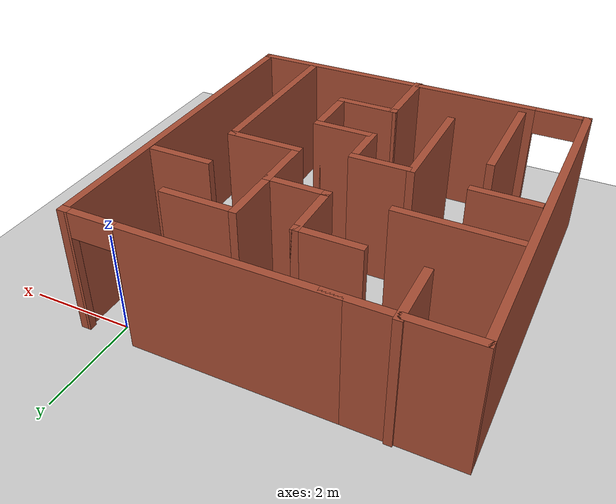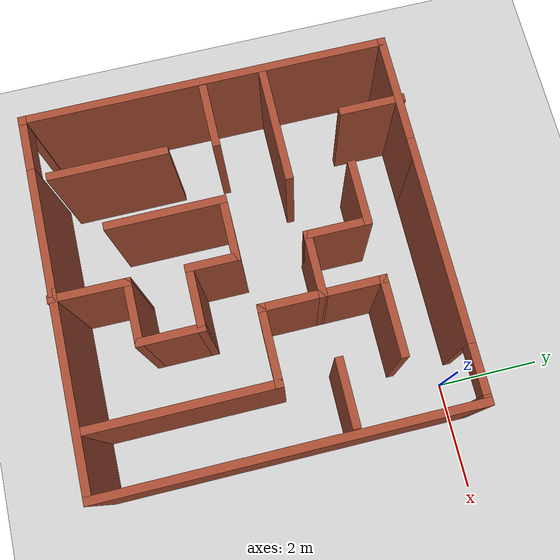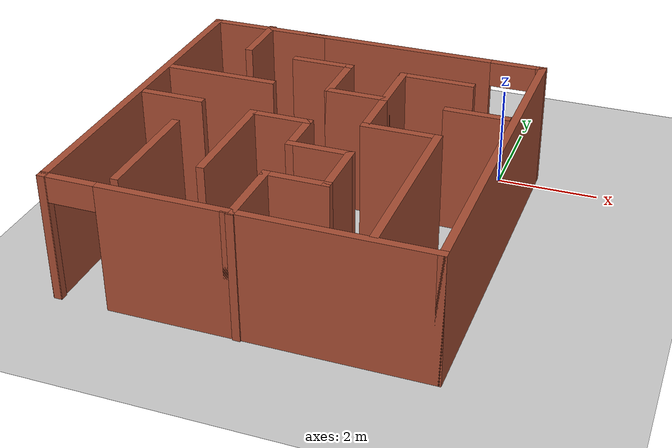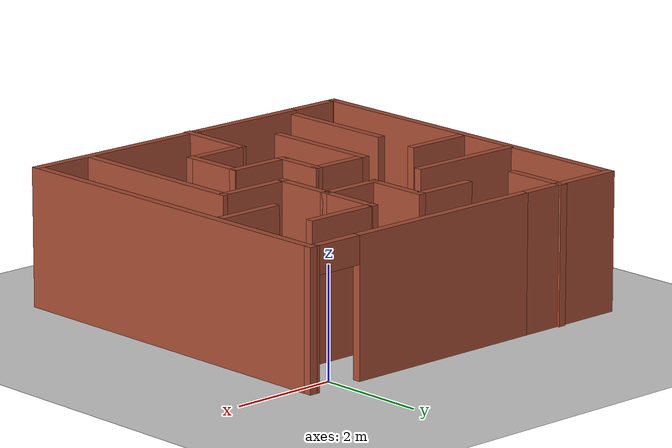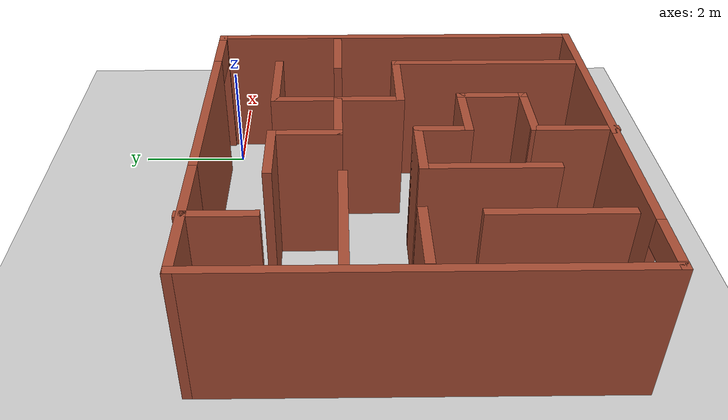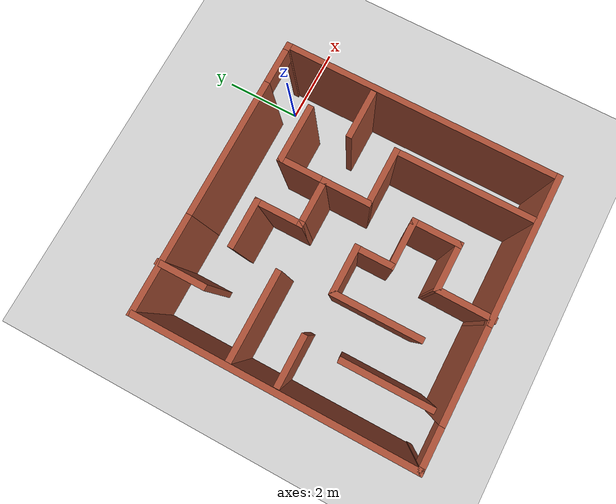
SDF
<sdf version="1.7">
 <world name="default">
  <light name="sun" type="directional">
   <pose>0 0 10 0 -0 0</pose>
   <diffuse>0.8 0.8 0.8 1</diffuse>
   <specular>0.2 0.2 0.2 1</specular>
   <attenuation>
    <range>1000</range>
    <constant>0.9</constant>
    <linear>0.01</linear>
    <quadratic>0.001</quadratic>
   </attenuation>
   <direction>-0.5 0.1 -0.9</direction>
   <spot><inner_angle>0</inner_angle><outer_angle>0</outer_angle><falloff>0</falloff></spot>
  </light>
  <model name="ground_plane">
   <static>1</static>
   <link name="link">
    <collision name="collision">
     <geometry><plane><normal>0 0 1</normal><size>100 100</size></plane></geometry>
     <surface><friction><ode><mu>100</mu><mu2>50</mu2></ode></friction></surface>
    </collision>
    <visual name="visual">
     <cast_shadows>0</cast_shadows>
     <geometry><plane><normal>0 0 1</normal><size>100 100</size></plane></geometry>
     <material>
      <script><uri>file://media/materials/scripts/gazebo.material</uri><name>Gazebo/Grey</name></script>
     </material>
    </visual>
   </link>
  </model>
  <gravity>0 0 -9.8</gravity>
  <magnetic_field>6e-06 2.3e-05 -4.2e-05</magnetic_field>
  <atmosphere type="adiabatic"/>
  <physics type="ode">
   <max_step_size>0.001</max_step_size>
   <real_time_factor>1</real_time_factor>
   <real_time_update_rate>1000</real_time_update_rate>
  </physics>
  <scene><ambient>0.4 0.4 0.4 1</ambient><background>0.7 0.7 0.7 1</background><shadows>1</shadows></scene>
  <audio><device>default</device></audio>
  <spherical_coordinates>
   <surface_model>EARTH_WGS84</surface_model>
   <latitude_deg>0</latitude_deg>
   <longitude_deg>0</longitude_deg>
   <elevation>0</elevation>
   <heading_deg>0</heading_deg>
  </spherical_coordinates>
  <model name="pet_maze">
   <pose>-2.81994 -3.15855 0 0 -0 0</pose>
   <link name="Wall_0">
    <collision name="Wall_0_Collision">
     <geometry><box><size>2.5 0.15 2.5</size></box></geometry>
     <pose>0 0 1.25 0 -0 0</pose>
    </collision>
    <visual name="Wall_0_Visual">
     <pose>0 0 1.25 0 -0 0</pose>
     <geometry><box><size>2.5 0.15 2.5</size></box></geometry>
     <material>
      <script><uri>file://media/materials/scripts/gazebo.material</uri><name>Gazebo/Bricks</name></script>
      <ambient>1 1 1 1</ambient>
     </material>
     <meta><layer>0</layer></meta>
    </visual>
    <pose>-2.3 3.41968 0 0 -0 3.14159</pose>
   </link>
   <link name="Wall_1">
    <collision name="Wall_1_Collision">
     <geometry><box><size>7 0.15 2.5</size></box></geometry>
     <pose>0 0 1.25 0 -0 0</pose>
    </collision>
    <visual name="Wall_1_Visual">
     <pose>0 0 1.25 0 -0 0</pose>
     <geometry><box><size>7 0.15 2.5</size></box></geometry>
     <material>
      <script><uri>file://media/materials/scripts/gazebo.material</uri><name>Gazebo/Bricks</name></script>
      <ambient>1 1 1 1</ambient>
     </material>
     <meta><layer>0</layer></meta>
    </visual>
    <pose>-3.475 -0.00532 0 0 -0 -1.5708</pose>
   </link>
   <link name="Wall_11">
    <collision name="Wall_11_Collision">
     <geometry><box><size>2.25 0.15 2.5</size></box></geometry>
     <pose>0 0 1.25 0 -0 0</pose>
    </collision>
    <visual name="Wall_11_Visual">
     <pose>0 0 1.25 0 -0 0</pose>
     <geometry><box><size>2.25 0.15 2.5</size></box></geometry>
     <material>
      <script><uri>file://media/materials/scripts/gazebo.material</uri><name>Gazebo/Bricks</name></script>
      <ambient>1 1 1 1</ambient>
     </material>
     <meta><layer>0</layer></meta>
    </visual>
    <pose>-1.10489 -1.22246 0 0 -0 1.5708</pose>
   </link>
   <link name="Wall_12">
    <collision name="Wall_12_Collision">
     <geometry><box><size>1.25 0.15 2.5</size></box></geometry>
     <pose>0 0 1.25 0 -0 0</pose>
    </collision>
    <visual name="Wall_12_Visual">
     <pose>0 0 1.25 0 -0 0</pose>
     <geometry><box><size>1.25 0.15 2.5</size></box></geometry>
     <material>
      <script><uri>file://media/materials/scripts/gazebo.material</uri><name>Gazebo/Bricks</name></script>
      <ambient>1 1 1 1</ambient>
     </material>
     <meta><layer>0</layer></meta>
    </visual>
    <pose>-0.554886 -0.172461 0 0 -0 0</pose>
   </link>
   <link name="Wall_13">
    <collision name="Wall_13_Collision">
     <geometry><box><size>1 0.15 2.5</size></box></geometry>
     <pose>0 0 1.25 0 -0 0</pose>
    </collision>
    <visual name="Wall_13_Visual">
     <pose>0 0 1.25 0 -0 0</pose>
     <geometry><box><size>1 0.15 2.5</size></box></geometry>
     <material>
      <script><uri>file://media/materials/scripts/gazebo.material</uri><name>Gazebo/Bricks</name></script>
      <ambient>1 1 1 1</ambient>
     </material>
     <meta><layer>0</layer></meta>
    </visual>
    <pose>-0.004886 -0.597461 0 0 -0 -1.5708</pose>
   </link>
   <link name="Wall_14">
    <collision name="Wall_14_Collision">
     <geometry><box><size>1.25 0.15 2.5</size></box></geometry>
     <pose>0 0 1.25 0 -0 0</pose>
    </collision>
    <visual name="Wall_14_Visual">
     <pose>0 0 1.25 0 -0 0</pose>
     <geometry><box><size>1.25 0.15 2.5</size></box></geometry>
     <material>
      <script><uri>file://media/materials/scripts/gazebo.material</uri><name>Gazebo/Bricks</name></script>
      <ambient>1 1 1 1</ambient>
     </material>
     <meta><layer>0</layer></meta>
    </visual>
    <pose>0.545114 -1.02246 0 0 -0 0</pose>
   </link>
   <link name="Wall_15">
    <collision name="Wall_15_Collision">
     <geometry><box><size>1.25 0.15 2.5</size></box></geometry>
     <pose>0 0 1.25 0 -0 0</pose>
    </collision>
    <visual name="Wall_15_Visual">
     <pose>0 0 1.25 0 -0 0</pose>
     <geometry><box><size>1.25 0.15 2.5</size></box></geometry>
     <material>
      <script><uri>file://media/materials/scripts/gazebo.material</uri><name>Gazebo/Bricks</name></script>
      <ambient>1 1 1 1</ambient>
     </material>
     <meta><layer>0</layer></meta>
    </visual>
    <pose>1.09511 -1.57246 0 0 -0 -1.5708</pose>
   </link>
   <link name="Wall_16">
    <collision name="Wall_16_Collision">
     <geometry><box><size>1.25 0.15 2.5</size></box></geometry>
     <pose>0 0 1.25 0 -0 0</pose>
    </collision>
    <visual name="Wall_16_Visual">
     <pose>0 0 1.25 0 -0 0</pose>
     <geometry><box><size>1.25 0.15 2.5</size></box></geometry>
     <material>
      <script><uri>file://media/materials/scripts/gazebo.material</uri><name>Gazebo/Bricks</name></script>
      <ambient>1 1 1 1</ambient>
     </material>
     <meta><layer>0</layer></meta>
    </visual>
    <pose>0.545114 -2.12246 0 0 -0 3.14159</pose>
   </link>
   <link name="Wall_17">
    <collision name="Wall_17_Collision">
     <geometry><box><size>1.48672 0.15 2.5</size></box></geometry>
     <pose>0 0 1.25 0 -0 0</pose>
    </collision>
    <visual name="Wall_17_Visual">
     <pose>0 0 1.25 0 -0 0</pose>
     <geometry><box><size>1.48672 0.15 2.5</size></box></geometry>
     <material>
      <script><uri>file://media/materials/scripts/gazebo.material</uri><name>Gazebo/Bricks</name></script>
      <ambient>1 1 1 1</ambient>
     </material>
     <meta><layer>0</layer></meta>
    </visual>
    <pose>-0.01182 -2.79081 0 0 -0 -1.58117</pose>
   </link>
   <link name="Wall_19">
    <collision name="Wall_19_Collision">
     <geometry><box><size>1.25 0.15 2.5</size></box></geometry>
     <pose>0 0 1.25 0 -0 0</pose>
    </collision>
    <visual name="Wall_19_Visual">
     <pose>0 0 1.25 0 -0 0</pose>
     <geometry><box><size>1.25 0.15 2.5</size></box></geometry>
     <material>
      <script><uri>file://media/materials/scripts/gazebo.material</uri><name>Gazebo/Bricks</name></script>
      <ambient>1 1 1 1</ambient>
     </material>
     <meta><layer>0</layer></meta>
    </visual>
    <pose>-0.655454 2.25309 0 0 -0 0</pose>
   </link>
   <link name="Wall_2">
    <pose>-1.8 -3.43032 0 0 -0 0</pose>
    <visual name="Wall_2_Visual_0">
     <pose>-1.66545 0 1.25 0 -0 0</pose>
     <geometry><box><size>0.169109 0.15 2.5</size></box></geometry>
     <material>
      <script><uri>file://media/materials/scripts/gazebo.material</uri><name>Gazebo/Bricks</name></script>
      <ambient>1 1 1 1</ambient>
     </material>
     <meta><layer>0</layer></meta>
    </visual>
    <collision name="Wall_2_Collision_0">
     <geometry><box><size>0.169109 0.15 2.5</size></box></geometry>
     <pose>-1.66545 0 1.25 0 -0 0</pose>
    </collision>
    <visual name="Wall_2_Visual_1">
     <pose>0.534554 0 1.25 0 -0 0</pose>
     <geometry><box><size>2.43089 0.15 2.5</size></box></geometry>
     <material>
      <script><uri>file://media/materials/scripts/gazebo.material</uri><name>Gazebo/Bricks</name></script>
      <ambient>1 1 1 1</ambient>
     </material>
     <meta><layer>0</layer></meta>
    </visual>
    <collision name="Wall_2_Collision_1">
     <geometry><box><size>2.43089 0.15 2.5</size></box></geometry>
     <pose>0.534554 0 1.25 0 -0 0</pose>
    </collision>
    <visual name="Wall_2_Visual_2">
     <pose>-1.13089 0 2.25 0 -0 0</pose>
     <geometry><box><size>0.9 0.15 0.5</size></box></geometry>
     <material>
      <script><uri>file://media/materials/scripts/gazebo.material</uri><name>Gazebo/Bricks</name></script>
      <ambient>1 1 1 1</ambient>
     </material>
     <meta><layer>0</layer></meta>
    </visual>
    <collision name="Wall_2_Collision_2">
     <geometry><box><size>0.9 0.15 0.5</size></box></geometry>
     <pose>-1.13089 0 2.25 0 -0 0</pose>
    </collision>
   </link>
   <link name="Wall_20">
    <collision name="Wall_20_Collision">
     <geometry><box><size>1.25 0.15 2.5</size></box></geometry>
     <pose>0 0 1.25 0 -0 0</pose>
    </collision>
    <visual name="Wall_20_Visual">
     <pose>0 0 1.25 0 -0 0</pose>
     <geometry><box><size>1.25 0.15 2.5</size></box></geometry>
     <material>
      <script><uri>file://media/materials/scripts/gazebo.material</uri><name>Gazebo/Bricks</name></script>
      <ambient>1 1 1 1</ambient>
     </material>
     <meta><layer>0</layer></meta>
    </visual>
    <pose>-0.105454 1.70309 0 0 -0 -1.5708</pose>
   </link>
   <link name="Wall_21">
    <collision name="Wall_21_Collision">
     <geometry><box><size>1.25 0.15 2.5</size></box></geometry>
     <pose>0 0 1.25 0 -0 0</pose>
    </collision>
    <visual name="Wall_21_Visual">
     <pose>0 0 1.25 0 -0 0</pose>
     <geometry><box><size>1.25 0.15 2.5</size></box></geometry>
     <material>
      <script><uri>file://media/materials/scripts/gazebo.material</uri><name>Gazebo/Bricks</name></script>
      <ambient>1 1 1 1</ambient>
     </material>
     <meta><layer>0</layer></meta>
    </visual>
    <pose>0.444546 1.15309 0 0 -0 0</pose>
   </link>
   <link name="Wall_22">
    <collision name="Wall_22_Collision">
     <geometry><box><size>1.25 0.15 2.5</size></box></geometry>
     <pose>0 0 1.25 0 -0 0</pose>
    </collision>
    <visual name="Wall_22_Visual">
     <pose>0 0 1.25 0 -0 0</pose>
     <geometry><box><size>1.25 0.15 2.5</size></box></geometry>
     <material>
      <script><uri>file://media/materials/scripts/gazebo.material</uri><name>Gazebo/Bricks</name></script>
      <ambient>1 1 1 1</ambient>
     </material>
     <meta><layer>0</layer></meta>
    </visual>
    <pose>0.994546 0.603093 0 0 -0 -1.5708</pose>
   </link>
   <link name="Wall_23">
    <collision name="Wall_23_Collision">
     <geometry><box><size>1.5 0.15 2.5</size></box></geometry>
     <pose>0 0 1.25 0 -0 0</pose>
    </collision>
    <visual name="Wall_23_Visual">
     <pose>0 0 1.25 0 -0 0</pose>
     <geometry><box><size>1.5 0.15 2.5</size></box></geometry>
     <material>
      <script><uri>file://media/materials/scripts/gazebo.material</uri><name>Gazebo/Bricks</name></script>
      <ambient>1 1 1 1</ambient>
     </material>
     <meta><layer>0</layer></meta>
    </visual>
    <pose>1.66955 0.053093 0 0 -0 0</pose>
   </link>
   <link name="Wall_24">
    <collision name="Wall_24_Collision">
     <geometry><box><size>3.5 0.15 2.5</size></box></geometry>
     <pose>0 0 1.25 0 -0 0</pose>
    </collision>
    <visual name="Wall_24_Visual">
     <pose>0 0 1.25 0 -0 0</pose>
     <geometry><box><size>3.5 0.15 2.5</size></box></geometry>
     <material>
      <script><uri>file://media/materials/scripts/gazebo.material</uri><name>Gazebo/Bricks</name></script>
      <ambient>1 1 1 1</ambient>
     </material>
     <meta><layer>0</layer></meta>
    </visual>
    <pose>2.34455 -1.62191 0 0 -0 -1.5708</pose>
   </link>
   <link name="Wall_26">
    <collision name="Wall_26_Collision">
     <geometry><box><size>1.25 0.15 2.5</size></box></geometry>
     <pose>0 0 1.25 0 -0 0</pose>
    </collision>
    <visual name="Wall_26_Visual">
     <pose>0 0 1.25 0 -0 0</pose>
     <geometry><box><size>1.25 0.15 2.5</size></box></geometry>
     <material>
      <script><uri>file://media/materials/scripts/gazebo.material</uri><name>Gazebo/Bricks</name></script>
      <ambient>1 1 1 1</ambient>
     </material>
     <meta><layer>0</layer></meta>
    </visual>
    <pose>2.76385 1.14685 0 0 -0 0</pose>
   </link>
   <link name="Wall_28">
    <collision name="Wall_28_Collision">
     <geometry><box><size>1.25 0.15 2.5</size></box></geometry>
     <pose>0 0 1.25 0 -0 0</pose>
    </collision>
    <visual name="Wall_28_Visual">
     <pose>0 0 1.25 0 -0 0</pose>
     <geometry><box><size>1.25 0.15 2.5</size></box></geometry>
     <material>
      <script><uri>file://media/materials/scripts/gazebo.material</uri><name>Gazebo/Bricks</name></script>
      <ambient>1 1 1 1</ambient>
     </material>
     <meta><layer>0</layer></meta>
    </visual>
    <pose>0.994546 1.70309 0 0 -0 1.5708</pose>
   </link>
   <link name="Wall_29">
    <collision name="Wall_29_Collision">
     <geometry><box><size>1.5 0.15 2.5</size></box></geometry>
     <pose>0 0 1.25 0 -0 0</pose>
    </collision>
    <visual name="Wall_29_Visual">
     <pose>0 0 1.25 0 -0 0</pose>
     <geometry><box><size>1.5 0.15 2.5</size></box></geometry>
     <material>
      <script><uri>file://media/materials/scripts/gazebo.material</uri><name>Gazebo/Bricks</name></script>
      <ambient>1 1 1 1</ambient>
     </material>
     <meta><layer>0</layer></meta>
    </visual>
    <pose>1.66955 2.25309 0 0 -0 0</pose>
   </link>
   <link name="Wall_3">
    <collision name="Wall_3_Collision">
     <geometry><box><size>3.75 0.15 2.5</size></box></geometry>
     <pose>0 0 1.25 0 -0 0</pose>
    </collision>
    <visual name="Wall_3_Visual">
     <pose>0 0 1.25 0 -0 0</pose>
     <geometry><box><size>3.75 0.15 2.5</size></box></geometry>
     <material>
      <script><uri>file://media/materials/scripts/gazebo.material</uri><name>Gazebo/Bricks</name></script>
      <ambient>1 1 1 1</ambient>
     </material>
     <meta><layer>0</layer></meta>
    </visual>
    <pose>1.675 -3.43032 0 0 -0 0</pose>
   </link>
   <link name="Wall_31">
    <collision name="Wall_31_Collision">
     <geometry><box><size>2.25 0.15 2.5</size></box></geometry>
     <pose>0 0 1.25 0 -0 0</pose>
    </collision>
    <visual name="Wall_31_Visual">
     <pose>0 0 1.25 0 -0 0</pose>
     <geometry><box><size>2.25 0.15 2.5</size></box></geometry>
     <material>
      <script><uri>file://media/materials/scripts/gazebo.material</uri><name>Gazebo/Bricks</name></script>
      <ambient>1 1 1 1</ambient>
     </material>
     <meta><layer>0</layer></meta>
    </visual>
    <pose>-2.27147 -2.05531 0 0 -0 -1.5708</pose>
   </link>
   <link name="Wall_33">
    <collision name="Wall_33_Collision">
     <geometry><box><size>1.25 0.15 2.5</size></box></geometry>
     <pose>0 0 1.25 0 -0 0</pose>
    </collision>
    <visual name="Wall_33_Visual">
     <pose>0 0 1.25 0 -0 0</pose>
     <geometry><box><size>1.25 0.15 2.5</size></box></geometry>
     <material>
      <script><uri>file://media/materials/scripts/gazebo.material</uri><name>Gazebo/Bricks</name></script>
      <ambient>1 1 1 1</ambient>
     </material>
     <meta><layer>0</layer></meta>
    </visual>
    <pose>-2.76738 -0.059968 0 0 -0 0</pose>
   </link>
   <link name="Wall_4">
    <collision name="Wall_4_Collision">
     <geometry><box><size>7 0.15 2.5</size></box></geometry>
     <pose>0 0 1.25 0 -0 0</pose>
    </collision>
    <visual name="Wall_4_Visual">
     <pose>0 0 1.25 0 -0 0</pose>
     <geometry><box><size>7 0.15 2.5</size></box></geometry>
     <material>
      <script><uri>file://media/materials/scripts/gazebo.material</uri><name>Gazebo/Bricks</name></script>
      <ambient>1 1 1 1</ambient>
     </material>
     <meta><layer>0</layer></meta>
    </visual>
    <pose>3.475 -0.00532 0 0 -0 1.5708</pose>
   </link>
   <link name="Wall_5">
    <pose>1.05 3.41968 0 0 -0 3.14159</pose>
    <visual name="Wall_5_Visual_0">
     <pose>-2.39901 0 1.25 0 -0 0</pose>
     <geometry><box><size>0.201978 0.15 2.5</size></box></geometry>
     <material>
      <script><uri>file://media/materials/scripts/gazebo.material</uri><name>Gazebo/Bricks</name></script>
      <ambient>1 1 1 1</ambient>
     </material>
     <meta><layer>0</layer></meta>
    </visual>
    <collision name="Wall_5_Collision_0">
     <geometry><box><size>0.201978 0.15 2.5</size></box></geometry>
     <pose>-2.39901 0 1.25 0 -0 0</pose>
    </collision>
    <visual name="Wall_5_Visual_1">
     <pose>0.550989 0 1.25 0 -0 0</pose>
     <geometry><box><size>3.89802 0.15 2.5</size></box></geometry>
     <material>
      <script><uri>file://media/materials/scripts/gazebo.material</uri><name>Gazebo/Bricks</name></script>
      <ambient>1 1 1 1</ambient>
     </material>
     <meta><layer>0</layer></meta>
    </visual>
    <collision name="Wall_5_Collision_1">
     <geometry><box><size>3.89802 0.15 2.5</size></box></geometry>
     <pose>0.550989 0 1.25 0 -0 0</pose>
    </collision>
    <visual name="Wall_5_Visual_2">
     <pose>-1.84802 0 2.25 0 -0 0</pose>
     <geometry><box><size>0.9 0.15 0.5</size></box></geometry>
     <material>
      <script><uri>file://media/materials/scripts/gazebo.material</uri><name>Gazebo/Bricks</name></script>
      <ambient>1 1 1 1</ambient>
     </material>
     <meta><layer>0</layer></meta>
    </visual>
    <collision name="Wall_5_Collision_2">
     <geometry><box><size>0.9 0.15 0.5</size></box></geometry>
     <pose>-1.84802 0 2.25 0 -0 0</pose>
    </collision>
   </link>
   <link name="Wall_7">
    <collision name="Wall_7_Collision">
     <geometry><box><size>1.25 0.15 2.5</size></box></geometry>
     <pose>0 0 1.25 0 -0 0</pose>
    </collision>
    <visual name="Wall_7_Visual">
     <pose>0 0 1.25 0 -0 0</pose>
     <geometry><box><size>1.25 0.15 2.5</size></box></geometry>
     <material>
      <script><uri>file://media/materials/scripts/gazebo.material</uri><name>Gazebo/Bricks</name></script>
      <ambient>1 1 1 1</ambient>
     </material>
     <meta><layer>0</layer></meta>
    </visual>
    <pose>-2.27147 2.90991 0 0 -0 -1.5708</pose>
   </link>
   <link name="Wall_9">
    <collision name="Wall_9_Collision">
     <geometry><box><size>2.25 0.15 2.5</size></box></geometry>
     <pose>0 0 1.25 0 -0 0</pose>
    </collision>
    <visual name="Wall_9_Visual">
     <pose>0 0 1.25 0 -0 0</pose>
     <geometry><box><size>2.25 0.15 2.5</size></box></geometry>
     <material>
      <script><uri>file://media/materials/scripts/gazebo.material</uri><name>Gazebo/Bricks</name></script>
      <ambient>1 1 1 1</ambient>
     </material>
     <meta><layer>0</layer></meta>
    </visual>
    <pose>-2.32772 1.08651 0 0 -0 0</pose>
   </link>
   <static>1</static>
  </model>
 </world>
</sdf>
